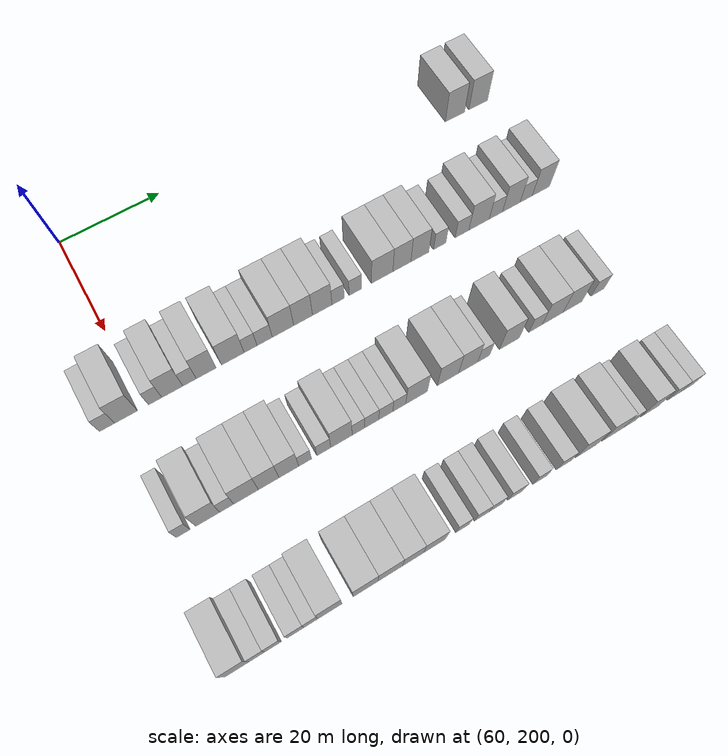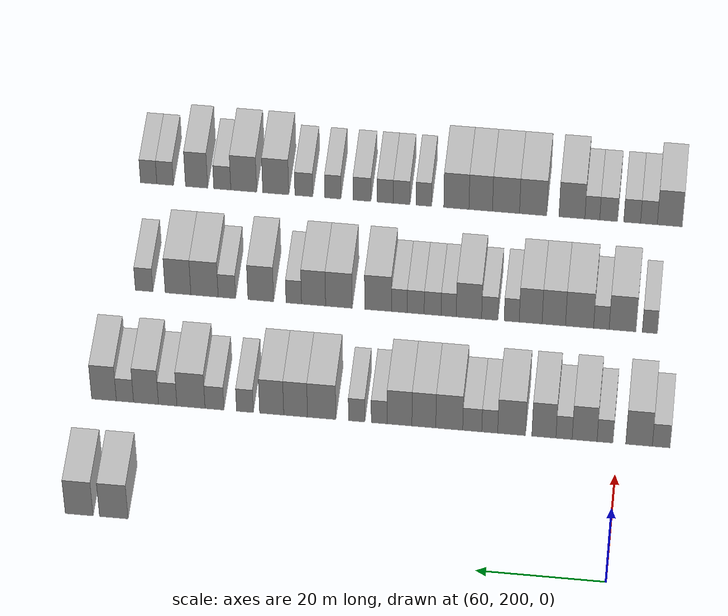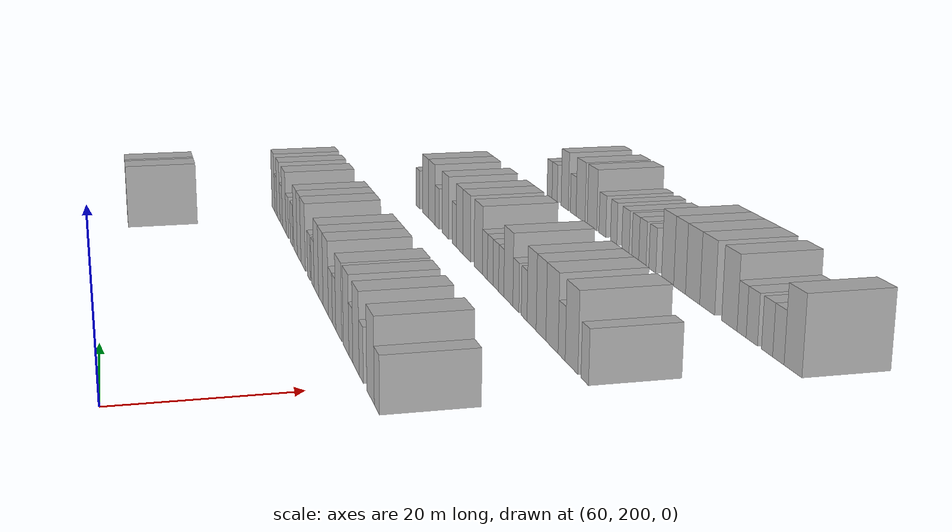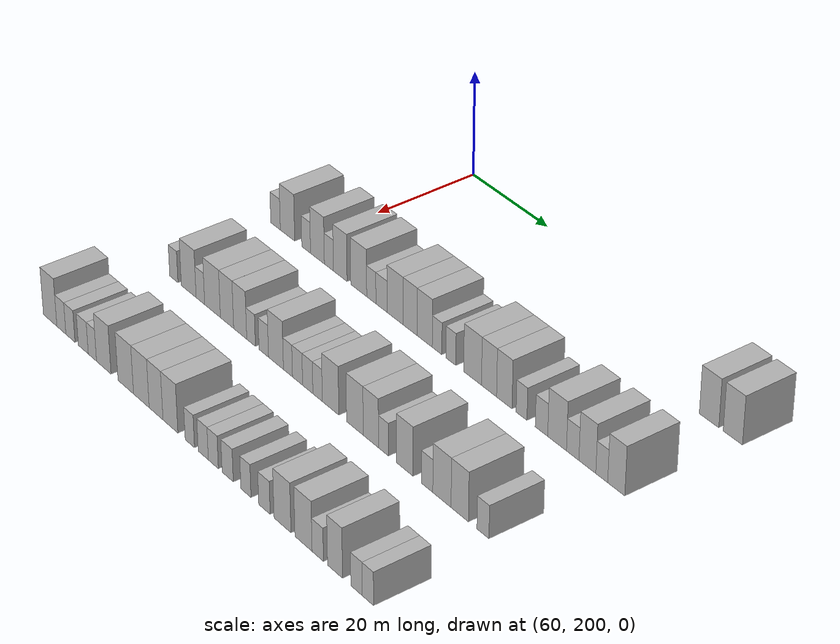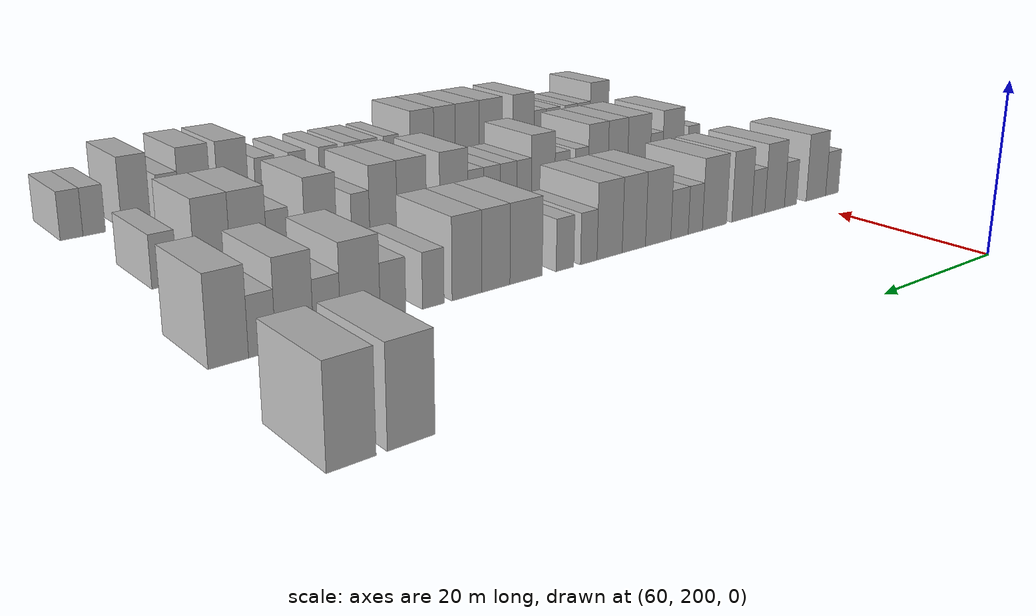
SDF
<sdf version="1.6">
 <world name="default">
  <model name="building_536">
   <static>1</static>
   <pose>69.0000 276.4742 0 0.000000 0.000000 0.000000</pose>
   <link name="link">
    <pose>0 0 4.50 0 0 0</pose>
    <collision name="collision"><geometry><box><size>10.0000 4.4548 9.0000</size></box></geometry></collision>
    <visual name="visual">
     <cast_shadows>0</cast_shadows>
     <geometry><box><size>10.0000 4.4548 9.0000</size></box></geometry>
     <material>
      <script>
       <uri>model://HANNAS_wall/materials/scripts</uri>
       <uri>model://HANNAS_wall/materials/textures</uri>
       <name>vrc/HANNAS_wall</name>
      </script>
     </material>
    </visual>
   </link>
  </model>
  <model name="building_537">
   <static>1</static>
   <pose>69.0000 281.8696 0 0.000000 0.000000 0.000000</pose>
   <link name="link">
    <pose>0 0 4.50 0 0 0</pose>
    <collision name="collision"><geometry><box><size>10.0000 4.3360 9.0000</size></box></geometry></collision>
    <visual name="visual">
     <cast_shadows>0</cast_shadows>
     <geometry><box><size>10.0000 4.3360 9.0000</size></box></geometry>
     <material>
      <script>
       <uri>model://HANNAS_wall/materials/scripts</uri>
       <uri>model://HANNAS_wall/materials/textures</uri>
       <name>vrc/HANNAS_wall</name>
      </script>
     </material>
    </visual>
   </link>
  </model>
  <model name="building_697">
   <static>1</static>
   <pose>91.0000 193.2687 0 0.000000 0.000000 0.000000</pose>
   <link name="link">
    <pose>0 0 3.00 0 0 0</pose>
    <collision name="collision"><geometry><box><size>10.0000 2.7837 6.0000</size></box></geometry></collision>
    <visual name="visual">
     <cast_shadows>0</cast_shadows>
     <geometry><box><size>10.0000 2.7837 6.0000</size></box></geometry>
     <material>
      <script>
       <uri>model://HANNAS_wall/materials/scripts</uri>
       <uri>model://HANNAS_wall/materials/textures</uri>
       <name>vrc/HANNAS_wall</name>
      </script>
     </material>
    </visual>
   </link>
  </model>
  <model name="building_698">
   <static>1</static>
   <pose>91.0000 196.7406 0 0.000000 0.000000 0.000000</pose>
   <link name="link">
    <pose>0 0 4.50 0 0 0</pose>
    <collision name="collision"><geometry><box><size>10.0000 4.1602 9.0000</size></box></geometry></collision>
    <visual name="visual">
     <cast_shadows>0</cast_shadows>
     <geometry><box><size>10.0000 4.1602 9.0000</size></box></geometry>
     <material>
      <script>
       <uri>model://HANNAS_wall/materials/scripts</uri>
       <uri>model://HANNAS_wall/materials/textures</uri>
       <name>vrc/HANNAS_wall</name>
      </script>
     </material>
    </visual>
   </link>
  </model>
  <model name="building_699">
   <static>1</static>
   <pose>91.0000 202.0687 0 0.000000 0.000000 0.000000</pose>
   <link name="link">
    <pose>0 0 3.00 0 0 0</pose>
    <collision name="collision"><geometry><box><size>10.0000 2.4960 6.0000</size></box></geometry></collision>
    <visual name="visual">
     <cast_shadows>0</cast_shadows>
     <geometry><box><size>10.0000 2.4960 6.0000</size></box></geometry>
     <material>
      <script>
       <uri>model://HANNAS_wall/materials/scripts</uri>
       <uri>model://HANNAS_wall/materials/textures</uri>
       <name>vrc/HANNAS_wall</name>
      </script>
     </material>
    </visual>
   </link>
  </model>
  <model name="building_700">
   <static>1</static>
   <pose>91.0000 205.2713 0 0.000000 0.000000 0.000000</pose>
   <link name="link">
    <pose>0 0 4.50 0 0 0</pose>
    <collision name="collision"><geometry><box><size>10.0000 3.9091 9.0000</size></box></geometry></collision>
    <visual name="visual">
     <cast_shadows>0</cast_shadows>
     <geometry><box><size>10.0000 3.9091 9.0000</size></box></geometry>
     <material>
      <script>
       <uri>model://HANNAS_wall/materials/scripts</uri>
       <uri>model://HANNAS_wall/materials/textures</uri>
       <name>vrc/HANNAS_wall</name>
      </script>
     </material>
    </visual>
   </link>
  </model>
  <model name="building_701">
   <static>1</static>
   <pose>91.0000 208.4976 0 0.000000 0.000000 0.000000</pose>
   <link name="link">
    <pose>0 0 3.00 0 0 0</pose>
    <collision name="collision"><geometry><box><size>10.0000 2.5435 6.0000</size></box></geometry></collision>
    <visual name="visual">
     <cast_shadows>0</cast_shadows>
     <geometry><box><size>10.0000 2.5435 6.0000</size></box></geometry>
     <material>
      <script>
       <uri>model://HANNAS_wall/materials/scripts</uri>
       <uri>model://HANNAS_wall/materials/textures</uri>
       <name>vrc/HANNAS_wall</name>
      </script>
     </material>
    </visual>
   </link>
  </model>
  <model name="building_702">
   <static>1</static>
   <pose>91.0000 211.6591 0 0.000000 0.000000 0.000000</pose>
   <link name="link">
    <pose>0 0 4.50 0 0 0</pose>
    <collision name="collision"><geometry><box><size>10.0000 3.7796 9.0000</size></box></geometry></collision>
    <visual name="visual">
     <cast_shadows>0</cast_shadows>
     <geometry><box><size>10.0000 3.7796 9.0000</size></box></geometry>
     <material>
      <script>
       <uri>model://HANNAS_wall/materials/scripts</uri>
       <uri>model://HANNAS_wall/materials/textures</uri>
       <name>vrc/HANNAS_wall</name>
      </script>
     </material>
    </visual>
   </link>
  </model>
  <model name="building_703">
   <static>1</static>
   <pose>91.0000 216.7347 0 0.000000 0.000000 0.000000</pose>
   <link name="link">
    <pose>0 0 4.50 0 0 0</pose>
    <collision name="collision"><geometry><box><size>10.0000 4.3715 9.0000</size></box></geometry></collision>
    <visual name="visual">
     <cast_shadows>0</cast_shadows>
     <geometry><box><size>10.0000 4.3715 9.0000</size></box></geometry>
     <material>
      <script>
       <uri>model://HANNAS_wall/materials/scripts</uri>
       <uri>model://HANNAS_wall/materials/textures</uri>
       <name>vrc/HANNAS_wall</name>
      </script>
     </material>
    </visual>
   </link>
  </model>
  <model name="building_704">
   <static>1</static>
   <pose>91.0000 220.1733 0 0.000000 0.000000 0.000000</pose>
   <link name="link">
    <pose>0 0 3.00 0 0 0</pose>
    <collision name="collision"><geometry><box><size>10.0000 2.5058 6.0000</size></box></geometry></collision>
    <visual name="visual">
     <cast_shadows>0</cast_shadows>
     <geometry><box><size>10.0000 2.5058 6.0000</size></box></geometry>
     <material>
      <script>
       <uri>model://HANNAS_wall/materials/scripts</uri>
       <uri>model://HANNAS_wall/materials/textures</uri>
       <name>vrc/HANNAS_wall</name>
      </script>
     </material>
    </visual>
   </link>
  </model>
  <model name="building_705">
   <static>1</static>
   <pose>91.0000 222.9258 0 0.000000 0.000000 0.000000</pose>
   <link name="link">
    <pose>0 0 3.00 0 0 0</pose>
    <collision name="collision"><geometry><box><size>10.0000 2.9991 6.0000</size></box></geometry></collision>
    <visual name="visual">
     <cast_shadows>0</cast_shadows>
     <geometry><box><size>10.0000 2.9991 6.0000</size></box></geometry>
     <material>
      <script>
       <uri>model://HANNAS_wall/materials/scripts</uri>
       <uri>model://HANNAS_wall/materials/textures</uri>
       <name>vrc/HANNAS_wall</name>
      </script>
     </material>
    </visual>
   </link>
  </model>
  <model name="building_706">
   <static>1</static>
   <pose>91.0000 226.5424 0 0.000000 0.000000 0.000000</pose>
   <link name="link">
    <pose>0 0 4.50 0 0 0</pose>
    <collision name="collision"><geometry><box><size>10.0000 4.2341 9.0000</size></box></geometry></collision>
    <visual name="visual">
     <cast_shadows>0</cast_shadows>
     <geometry><box><size>10.0000 4.2341 9.0000</size></box></geometry>
     <material>
      <script>
       <uri>model://HANNAS_wall/materials/scripts</uri>
       <uri>model://HANNAS_wall/materials/textures</uri>
       <name>vrc/HANNAS_wall</name>
      </script>
     </material>
    </visual>
   </link>
  </model>
  <model name="building_707">
   <static>1</static>
   <pose>91.0000 230.5413 0 0.000000 0.000000 0.000000</pose>
   <link name="link">
    <pose>0 0 4.50 0 0 0</pose>
    <collision name="collision"><geometry><box><size>10.0000 3.7637 9.0000</size></box></geometry></collision>
    <visual name="visual">
     <cast_shadows>0</cast_shadows>
     <geometry><box><size>10.0000 3.7637 9.0000</size></box></geometry>
     <material>
      <script>
       <uri>model://HANNAS_wall/materials/scripts</uri>
       <uri>model://HANNAS_wall/materials/textures</uri>
       <name>vrc/HANNAS_wall</name>
      </script>
     </material>
    </visual>
   </link>
  </model>
  <model name="building_708">
   <static>1</static>
   <pose>91.0000 234.3810 0 0.000000 0.000000 0.000000</pose>
   <link name="link">
    <pose>0 0 4.50 0 0 0</pose>
    <collision name="collision"><geometry><box><size>10.0000 3.9159 9.0000</size></box></geometry></collision>
    <visual name="visual">
     <cast_shadows>0</cast_shadows>
     <geometry><box><size>10.0000 3.9159 9.0000</size></box></geometry>
     <material>
      <script>
       <uri>model://HANNAS_wall/materials/scripts</uri>
       <uri>model://HANNAS_wall/materials/textures</uri>
       <name>vrc/HANNAS_wall</name>
      </script>
     </material>
    </visual>
   </link>
  </model>
  <model name="building_709">
   <static>1</static>
   <pose>91.0000 237.5870 0 0.000000 0.000000 0.000000</pose>
   <link name="link">
    <pose>0 0 3.00 0 0 0</pose>
    <collision name="collision"><geometry><box><size>10.0000 2.4960 6.0000</size></box></geometry></collision>
    <visual name="visual">
     <cast_shadows>0</cast_shadows>
     <geometry><box><size>10.0000 2.4960 6.0000</size></box></geometry>
     <material>
      <script>
       <uri>model://HANNAS_wall/materials/scripts</uri>
       <uri>model://HANNAS_wall/materials/textures</uri>
       <name>vrc/HANNAS_wall</name>
      </script>
     </material>
    </visual>
   </link>
  </model>
  <model name="building_710">
   <static>1</static>
   <pose>91.0000 241.1282 0 0.000000 0.000000 0.000000</pose>
   <link name="link">
    <pose>0 0 3.00 0 0 0</pose>
    <collision name="collision"><geometry><box><size>10.0000 2.5864 6.0000</size></box></geometry></collision>
    <visual name="visual">
     <cast_shadows>0</cast_shadows>
     <geometry><box><size>10.0000 2.5864 6.0000</size></box></geometry>
     <material>
      <script>
       <uri>model://HANNAS_wall/materials/scripts</uri>
       <uri>model://HANNAS_wall/materials/textures</uri>
       <name>vrc/HANNAS_wall</name>
      </script>
     </material>
    </visual>
   </link>
  </model>
  <model name="building_711">
   <static>1</static>
   <pose>91.0000 246.6626 0 0.000000 0.000000 0.000000</pose>
   <link name="link">
    <pose>0 0 4.50 0 0 0</pose>
    <collision name="collision"><geometry><box><size>10.0000 4.4825 9.0000</size></box></geometry></collision>
    <visual name="visual">
     <cast_shadows>0</cast_shadows>
     <geometry><box><size>10.0000 4.4825 9.0000</size></box></geometry>
     <material>
      <script>
       <uri>model://HANNAS_wall/materials/scripts</uri>
       <uri>model://HANNAS_wall/materials/textures</uri>
       <name>vrc/HANNAS_wall</name>
      </script>
     </material>
    </visual>
   </link>
  </model>
  <model name="building_712">
   <static>1</static>
   <pose>91.0000 250.7848 0 0.000000 0.000000 0.000000</pose>
   <link name="link">
    <pose>0 0 4.50 0 0 0</pose>
    <collision name="collision"><geometry><box><size>10.0000 3.7620 9.0000</size></box></geometry></collision>
    <visual name="visual">
     <cast_shadows>0</cast_shadows>
     <geometry><box><size>10.0000 3.7620 9.0000</size></box></geometry>
     <material>
      <script>
       <uri>model://HANNAS_wall/materials/scripts</uri>
       <uri>model://HANNAS_wall/materials/textures</uri>
       <name>vrc/HANNAS_wall</name>
      </script>
     </material>
    </visual>
   </link>
  </model>
  <model name="building_713">
   <static>1</static>
   <pose>91.0000 254.5737 0 0.000000 0.000000 0.000000</pose>
   <link name="link">
    <pose>0 0 4.50 0 0 0</pose>
    <collision name="collision"><geometry><box><size>10.0000 3.8157 9.0000</size></box></geometry></collision>
    <visual name="visual">
     <cast_shadows>0</cast_shadows>
     <geometry><box><size>10.0000 3.8157 9.0000</size></box></geometry>
     <material>
      <script>
       <uri>model://HANNAS_wall/materials/scripts</uri>
       <uri>model://HANNAS_wall/materials/textures</uri>
       <name>vrc/HANNAS_wall</name>
      </script>
     </material>
    </visual>
   </link>
  </model>
  <model name="building_714">
   <static>1</static>
   <pose>91.0000 258.8102 0 0.000000 0.000000 0.000000</pose>
   <link name="link">
    <pose>0 0 3.00 0 0 0</pose>
    <collision name="collision"><geometry><box><size>10.0000 2.6571 6.0000</size></box></geometry></collision>
    <visual name="visual">
     <cast_shadows>0</cast_shadows>
     <geometry><box><size>10.0000 2.6571 6.0000</size></box></geometry>
     <material>
      <script>
       <uri>model://HANNAS_wall/materials/scripts</uri>
       <uri>model://HANNAS_wall/materials/textures</uri>
       <name>vrc/HANNAS_wall</name>
      </script>
     </material>
    </visual>
   </link>
  </model>
  <model name="building_715">
   <static>1</static>
   <pose>91.0000 263.6371 0 0.000000 0.000000 0.000000</pose>
   <link name="link">
    <pose>0 0 3.00 0 0 0</pose>
    <collision name="collision"><geometry><box><size>10.0000 2.9966 6.0000</size></box></geometry></collision>
    <visual name="visual">
     <cast_shadows>0</cast_shadows>
     <geometry><box><size>10.0000 2.9966 6.0000</size></box></geometry>
     <material>
      <script>
       <uri>model://HANNAS_wall/materials/scripts</uri>
       <uri>model://HANNAS_wall/materials/textures</uri>
       <name>vrc/HANNAS_wall</name>
      </script>
     </material>
    </visual>
   </link>
  </model>
  <model name="building_716">
   <static>1</static>
   <pose>91.0000 267.3681 0 0.000000 0.000000 0.000000</pose>
   <link name="link">
    <pose>0 0 4.50 0 0 0</pose>
    <collision name="collision"><geometry><box><size>10.0000 4.4655 9.0000</size></box></geometry></collision>
    <visual name="visual">
     <cast_shadows>0</cast_shadows>
     <geometry><box><size>10.0000 4.4655 9.0000</size></box></geometry>
     <material>
      <script>
       <uri>model://HANNAS_wall/materials/scripts</uri>
       <uri>model://HANNAS_wall/materials/textures</uri>
       <name>vrc/HANNAS_wall</name>
      </script>
     </material>
    </visual>
   </link>
  </model>
  <model name="building_717">
   <static>1</static>
   <pose>91.0000 271.0671 0 0.000000 0.000000 0.000000</pose>
   <link name="link">
    <pose>0 0 3.00 0 0 0</pose>
    <collision name="collision"><geometry><box><size>10.0000 2.9323 6.0000</size></box></geometry></collision>
    <visual name="visual">
     <cast_shadows>0</cast_shadows>
     <geometry><box><size>10.0000 2.9323 6.0000</size></box></geometry>
     <material>
      <script>
       <uri>model://HANNAS_wall/materials/scripts</uri>
       <uri>model://HANNAS_wall/materials/textures</uri>
       <name>vrc/HANNAS_wall</name>
      </script>
     </material>
    </visual>
   </link>
  </model>
  <model name="building_718">
   <static>1</static>
   <pose>91.0000 274.5083 0 0.000000 0.000000 0.000000</pose>
   <link name="link">
    <pose>0 0 4.50 0 0 0</pose>
    <collision name="collision"><geometry><box><size>10.0000 3.9501 9.0000</size></box></geometry></collision>
    <visual name="visual">
     <cast_shadows>0</cast_shadows>
     <geometry><box><size>10.0000 3.9501 9.0000</size></box></geometry>
     <material>
      <script>
       <uri>model://HANNAS_wall/materials/scripts</uri>
       <uri>model://HANNAS_wall/materials/textures</uri>
       <name>vrc/HANNAS_wall</name>
      </script>
     </material>
    </visual>
   </link>
  </model>
  <model name="building_719">
   <static>1</static>
   <pose>91.0000 277.8491 0 0.000000 0.000000 0.000000</pose>
   <link name="link">
    <pose>0 0 3.00 0 0 0</pose>
    <collision name="collision"><geometry><box><size>10.0000 2.7315 6.0000</size></box></geometry></collision>
    <visual name="visual">
     <cast_shadows>0</cast_shadows>
     <geometry><box><size>10.0000 2.7315 6.0000</size></box></geometry>
     <material>
      <script>
       <uri>model://HANNAS_wall/materials/scripts</uri>
       <uri>model://HANNAS_wall/materials/textures</uri>
       <name>vrc/HANNAS_wall</name>
      </script>
     </material>
    </visual>
   </link>
  </model>
  <model name="building_720">
   <static>1</static>
   <pose>91.0000 281.1796 0 0.000000 0.000000 0.000000</pose>
   <link name="link">
    <pose>0 0 4.50 0 0 0</pose>
    <collision name="collision"><geometry><box><size>10.0000 3.9295 9.0000</size></box></geometry></collision>
    <visual name="visual">
     <cast_shadows>0</cast_shadows>
     <geometry><box><size>10.0000 3.9295 9.0000</size></box></geometry>
     <material>
      <script>
       <uri>model://HANNAS_wall/materials/scripts</uri>
       <uri>model://HANNAS_wall/materials/textures</uri>
       <name>vrc/HANNAS_wall</name>
      </script>
     </material>
    </visual>
   </link>
  </model>
  <model name="building_878">
   <static>1</static>
   <pose>113.0000 196.4875 0 0.000000 0.000000 0.000000</pose>
   <link name="link">
    <pose>0 0 3.00 0 0 0</pose>
    <collision name="collision"><geometry><box><size>10.0000 2.4265 6.0000</size></box></geometry></collision>
    <visual name="visual">
     <cast_shadows>0</cast_shadows>
     <geometry><box><size>10.0000 2.4265 6.0000</size></box></geometry>
     <material>
      <script>
       <uri>model://HANNAS_wall/materials/scripts</uri>
       <uri>model://HANNAS_wall/materials/textures</uri>
       <name>vrc/HANNAS_wall</name>
      </script>
     </material>
    </visual>
   </link>
  </model>
  <model name="building_879">
   <static>1</static>
   <pose>113.0000 200.8503 0 0.000000 0.000000 0.000000</pose>
   <link name="link">
    <pose>0 0 4.50 0 0 0</pose>
    <collision name="collision"><geometry><box><size>10.0000 4.2990 9.0000</size></box></geometry></collision>
    <visual name="visual">
     <cast_shadows>0</cast_shadows>
     <geometry><box><size>10.0000 4.2990 9.0000</size></box></geometry>
     <material>
      <script>
       <uri>model://HANNAS_wall/materials/scripts</uri>
       <uri>model://HANNAS_wall/materials/textures</uri>
       <name>vrc/HANNAS_wall</name>
      </script>
     </material>
    </visual>
   </link>
  </model>
  <model name="building_880">
   <static>1</static>
   <pose>113.0000 204.2411 0 0.000000 0.000000 0.000000</pose>
   <link name="link">
    <pose>0 0 3.00 0 0 0</pose>
    <collision name="collision"><geometry><box><size>10.0000 2.4826 6.0000</size></box></geometry></collision>
    <visual name="visual">
     <cast_shadows>0</cast_shadows>
     <geometry><box><size>10.0000 2.4826 6.0000</size></box></geometry>
     <material>
      <script>
       <uri>model://HANNAS_wall/materials/scripts</uri>
       <uri>model://HANNAS_wall/materials/textures</uri>
       <name>vrc/HANNAS_wall</name>
      </script>
     </material>
    </visual>
   </link>
  </model>
  <model name="building_881">
   <static>1</static>
   <pose>113.0000 207.7307 0 0.000000 0.000000 0.000000</pose>
   <link name="link">
    <pose>0 0 4.50 0 0 0</pose>
    <collision name="collision"><geometry><box><size>10.0000 4.4964 9.0000</size></box></geometry></collision>
    <visual name="visual">
     <cast_shadows>0</cast_shadows>
     <geometry><box><size>10.0000 4.4964 9.0000</size></box></geometry>
     <material>
      <script>
       <uri>model://HANNAS_wall/materials/scripts</uri>
       <uri>model://HANNAS_wall/materials/textures</uri>
       <name>vrc/HANNAS_wall</name>
      </script>
     </material>
    </visual>
   </link>
  </model>
  <model name="building_882">
   <static>1</static>
   <pose>113.0000 211.8570 0 0.000000 0.000000 0.000000</pose>
   <link name="link">
    <pose>0 0 4.50 0 0 0</pose>
    <collision name="collision"><geometry><box><size>10.0000 3.7563 9.0000</size></box></geometry></collision>
    <visual name="visual">
     <cast_shadows>0</cast_shadows>
     <geometry><box><size>10.0000 3.7563 9.0000</size></box></geometry>
     <material>
      <script>
       <uri>model://HANNAS_wall/materials/scripts</uri>
       <uri>model://HANNAS_wall/materials/textures</uri>
       <name>vrc/HANNAS_wall</name>
      </script>
     </material>
    </visual>
   </link>
  </model>
  <model name="building_883">
   <static>1</static>
   <pose>113.0000 215.5660 0 0.000000 0.000000 0.000000</pose>
   <link name="link">
    <pose>0 0 4.50 0 0 0</pose>
    <collision name="collision"><geometry><box><size>10.0000 3.6616 9.0000</size></box></geometry></collision>
    <visual name="visual">
     <cast_shadows>0</cast_shadows>
     <geometry><box><size>10.0000 3.6616 9.0000</size></box></geometry>
     <material>
      <script>
       <uri>model://HANNAS_wall/materials/scripts</uri>
       <uri>model://HANNAS_wall/materials/textures</uri>
       <name>vrc/HANNAS_wall</name>
      </script>
     </material>
    </visual>
   </link>
  </model>
  <model name="building_884">
   <static>1</static>
   <pose>113.0000 218.6045 0 0.000000 0.000000 0.000000</pose>
   <link name="link">
    <pose>0 0 3.00 0 0 0</pose>
    <collision name="collision"><geometry><box><size>10.0000 2.4155 6.0000</size></box></geometry></collision>
    <visual name="visual">
     <cast_shadows>0</cast_shadows>
     <geometry><box><size>10.0000 2.4155 6.0000</size></box></geometry>
     <material>
      <script>
       <uri>model://HANNAS_wall/materials/scripts</uri>
       <uri>model://HANNAS_wall/materials/textures</uri>
       <name>vrc/HANNAS_wall</name>
      </script>
     </material>
    </visual>
   </link>
  </model>
  <model name="building_885">
   <static>1</static>
   <pose>113.0000 222.1207 0 0.000000 0.000000 0.000000</pose>
   <link name="link">
    <pose>0 0 3.00 0 0 0</pose>
    <collision name="collision"><geometry><box><size>10.0000 2.6170 6.0000</size></box></geometry></collision>
    <visual name="visual">
     <cast_shadows>0</cast_shadows>
     <geometry><box><size>10.0000 2.6170 6.0000</size></box></geometry>
     <material>
      <script>
       <uri>model://HANNAS_wall/materials/scripts</uri>
       <uri>model://HANNAS_wall/materials/textures</uri>
       <name>vrc/HANNAS_wall</name>
      </script>
     </material>
    </visual>
   </link>
  </model>
  <model name="building_886">
   <static>1</static>
   <pose>113.0000 225.4648 0 0.000000 0.000000 0.000000</pose>
   <link name="link">
    <pose>0 0 4.50 0 0 0</pose>
    <collision name="collision"><geometry><box><size>10.0000 4.0712 9.0000</size></box></geometry></collision>
    <visual name="visual">
     <cast_shadows>0</cast_shadows>
     <geometry><box><size>10.0000 4.0712 9.0000</size></box></geometry>
     <material>
      <script>
       <uri>model://HANNAS_wall/materials/scripts</uri>
       <uri>model://HANNAS_wall/materials/textures</uri>
       <name>vrc/HANNAS_wall</name>
      </script>
     </material>
    </visual>
   </link>
  </model>
  <model name="building_887">
   <static>1</static>
   <pose>113.0000 228.7175 0 0.000000 0.000000 0.000000</pose>
   <link name="link">
    <pose>0 0 3.00 0 0 0</pose>
    <collision name="collision"><geometry><box><size>10.0000 2.4342 6.0000</size></box></geometry></collision>
    <visual name="visual">
     <cast_shadows>0</cast_shadows>
     <geometry><box><size>10.0000 2.4342 6.0000</size></box></geometry>
     <material>
      <script>
       <uri>model://HANNAS_wall/materials/scripts</uri>
       <uri>model://HANNAS_wall/materials/textures</uri>
       <name>vrc/HANNAS_wall</name>
      </script>
     </material>
    </visual>
   </link>
  </model>
  <model name="building_888">
   <static>1</static>
   <pose>113.0000 231.2942 0 0.000000 0.000000 0.000000</pose>
   <link name="link">
    <pose>0 0 3.00 0 0 0</pose>
    <collision name="collision"><geometry><box><size>10.0000 2.7192 6.0000</size></box></geometry></collision>
    <visual name="visual">
     <cast_shadows>0</cast_shadows>
     <geometry><box><size>10.0000 2.7192 6.0000</size></box></geometry>
     <material>
      <script>
       <uri>model://HANNAS_wall/materials/scripts</uri>
       <uri>model://HANNAS_wall/materials/textures</uri>
       <name>vrc/HANNAS_wall</name>
      </script>
     </material>
    </visual>
   </link>
  </model>
  <model name="building_889">
   <static>1</static>
   <pose>113.0000 234.0199 0 0.000000 0.000000 0.000000</pose>
   <link name="link">
    <pose>0 0 3.00 0 0 0</pose>
    <collision name="collision"><geometry><box><size>10.0000 2.7321 6.0000</size></box></geometry></collision>
    <visual name="visual">
     <cast_shadows>0</cast_shadows>
     <geometry><box><size>10.0000 2.7321 6.0000</size></box></geometry>
     <material>
      <script>
       <uri>model://HANNAS_wall/materials/scripts</uri>
       <uri>model://HANNAS_wall/materials/textures</uri>
       <name>vrc/HANNAS_wall</name>
      </script>
     </material>
    </visual>
   </link>
  </model>
  <model name="building_890">
   <static>1</static>
   <pose>113.0000 236.6410 0 0.000000 0.000000 0.000000</pose>
   <link name="link">
    <pose>0 0 3.00 0 0 0</pose>
    <collision name="collision"><geometry><box><size>10.0000 2.5101 6.0000</size></box></geometry></collision>
    <visual name="visual">
     <cast_shadows>0</cast_shadows>
     <geometry><box><size>10.0000 2.5101 6.0000</size></box></geometry>
     <material>
      <script>
       <uri>model://HANNAS_wall/materials/scripts</uri>
       <uri>model://HANNAS_wall/materials/textures</uri>
       <name>vrc/HANNAS_wall</name>
      </script>
     </material>
    </visual>
   </link>
  </model>
  <model name="building_891">
   <static>1</static>
   <pose>113.0000 240.0568 0 0.000000 0.000000 0.000000</pose>
   <link name="link">
    <pose>0 0 4.50 0 0 0</pose>
    <collision name="collision"><geometry><box><size>10.0000 4.3216 9.0000</size></box></geometry></collision>
    <visual name="visual">
     <cast_shadows>0</cast_shadows>
     <geometry><box><size>10.0000 4.3216 9.0000</size></box></geometry>
     <material>
      <script>
       <uri>model://HANNAS_wall/materials/scripts</uri>
       <uri>model://HANNAS_wall/materials/textures</uri>
       <name>vrc/HANNAS_wall</name>
      </script>
     </material>
    </visual>
   </link>
  </model>
  <model name="building_892">
   <static>1</static>
   <pose>113.0000 246.3700 0 0.000000 0.000000 0.000000</pose>
   <link name="link">
    <pose>0 0 4.50 0 0 0</pose>
    <collision name="collision"><geometry><box><size>10.0000 4.3047 9.0000</size></box></geometry></collision>
    <visual name="visual">
     <cast_shadows>0</cast_shadows>
     <geometry><box><size>10.0000 4.3047 9.0000</size></box></geometry>
     <material>
      <script>
       <uri>model://HANNAS_wall/materials/scripts</uri>
       <uri>model://HANNAS_wall/materials/textures</uri>
       <name>vrc/HANNAS_wall</name>
      </script>
     </material>
    </visual>
   </link>
  </model>
  <model name="building_893">
   <static>1</static>
   <pose>113.0000 250.4628 0 0.000000 0.000000 0.000000</pose>
   <link name="link">
    <pose>0 0 4.50 0 0 0</pose>
    <collision name="collision"><geometry><box><size>10.0000 3.8809 9.0000</size></box></geometry></collision>
    <visual name="visual">
     <cast_shadows>0</cast_shadows>
     <geometry><box><size>10.0000 3.8809 9.0000</size></box></geometry>
     <material>
      <script>
       <uri>model://HANNAS_wall/materials/scripts</uri>
       <uri>model://HANNAS_wall/materials/textures</uri>
       <name>vrc/HANNAS_wall</name>
      </script>
     </material>
    </visual>
   </link>
  </model>
  <model name="building_894">
   <static>1</static>
   <pose>113.0000 253.6538 0 0.000000 0.000000 0.000000</pose>
   <link name="link">
    <pose>0 0 3.00 0 0 0</pose>
    <collision name="collision"><geometry><box><size>10.0000 2.5013 6.0000</size></box></geometry></collision>
    <visual name="visual">
     <cast_shadows>0</cast_shadows>
     <geometry><box><size>10.0000 2.5013 6.0000</size></box></geometry>
     <material>
      <script>
       <uri>model://HANNAS_wall/materials/scripts</uri>
       <uri>model://HANNAS_wall/materials/textures</uri>
       <name>vrc/HANNAS_wall</name>
      </script>
     </material>
    </visual>
   </link>
  </model>
  <model name="building_895">
   <static>1</static>
   <pose>113.0000 258.9767 0 0.000000 0.000000 0.000000</pose>
   <link name="link">
    <pose>0 0 4.50 0 0 0</pose>
    <collision name="collision"><geometry><box><size>10.0000 4.1444 9.0000</size></box></geometry></collision>
    <visual name="visual">
     <cast_shadows>0</cast_shadows>
     <geometry><box><size>10.0000 4.1444 9.0000</size></box></geometry>
     <material>
      <script>
       <uri>model://HANNAS_wall/materials/scripts</uri>
       <uri>model://HANNAS_wall/materials/textures</uri>
       <name>vrc/HANNAS_wall</name>
      </script>
     </material>
    </visual>
   </link>
  </model>
  <model name="building_896">
   <static>1</static>
   <pose>113.0000 264.4590 0 0.000000 0.000000 0.000000</pose>
   <link name="link">
    <pose>0 0 3.00 0 0 0</pose>
    <collision name="collision"><geometry><box><size>10.0000 2.8202 6.0000</size></box></geometry></collision>
    <visual name="visual">
     <cast_shadows>0</cast_shadows>
     <geometry><box><size>10.0000 2.8202 6.0000</size></box></geometry>
     <material>
      <script>
       <uri>model://HANNAS_wall/materials/scripts</uri>
       <uri>model://HANNAS_wall/materials/textures</uri>
       <name>vrc/HANNAS_wall</name>
      </script>
     </material>
    </visual>
   </link>
  </model>
  <model name="building_897">
   <static>1</static>
   <pose>113.0000 268.0753 0 0.000000 0.000000 0.000000</pose>
   <link name="link">
    <pose>0 0 4.50 0 0 0</pose>
    <collision name="collision"><geometry><box><size>10.0000 4.4126 9.0000</size></box></geometry></collision>
    <visual name="visual">
     <cast_shadows>0</cast_shadows>
     <geometry><box><size>10.0000 4.4126 9.0000</size></box></geometry>
     <material>
      <script>
       <uri>model://HANNAS_wall/materials/scripts</uri>
       <uri>model://HANNAS_wall/materials/textures</uri>
       <name>vrc/HANNAS_wall</name>
      </script>
     </material>
    </visual>
   </link>
  </model>
  <model name="building_898">
   <static>1</static>
   <pose>113.0000 272.3599 0 0.000000 0.000000 0.000000</pose>
   <link name="link">
    <pose>0 0 4.50 0 0 0</pose>
    <collision name="collision"><geometry><box><size>10.0000 4.1566 9.0000</size></box></geometry></collision>
    <visual name="visual">
     <cast_shadows>0</cast_shadows>
     <geometry><box><size>10.0000 4.1566 9.0000</size></box></geometry>
     <material>
      <script>
       <uri>model://HANNAS_wall/materials/scripts</uri>
       <uri>model://HANNAS_wall/materials/textures</uri>
       <name>vrc/HANNAS_wall</name>
      </script>
     </material>
    </visual>
   </link>
  </model>
  <model name="building_899">
   <static>1</static>
   <pose>113.0000 277.8537 0 0.000000 0.000000 0.000000</pose>
   <link name="link">
    <pose>0 0 3.00 0 0 0</pose>
    <collision name="collision"><geometry><box><size>10.0000 2.8308 6.0000</size></box></geometry></collision>
    <visual name="visual">
     <cast_shadows>0</cast_shadows>
     <geometry><box><size>10.0000 2.8308 6.0000</size></box></geometry>
     <material>
      <script>
       <uri>model://HANNAS_wall/materials/scripts</uri>
       <uri>model://HANNAS_wall/materials/textures</uri>
       <name>vrc/HANNAS_wall</name>
      </script>
     </material>
    </visual>
   </link>
  </model>
  <model name="building_1074">
   <static>1</static>
   <pose>135.0000 194.6925 0 0.000000 0.000000 0.000000</pose>
   <link name="link">
    <pose>0 0 4.50 0 0 0</pose>
    <collision name="collision"><geometry><box><size>10.0000 4.0730 9.0000</size></box></geometry></collision>
    <visual name="visual">
     <cast_shadows>0</cast_shadows>
     <geometry><box><size>10.0000 4.0730 9.0000</size></box></geometry>
     <material>
      <script>
       <uri>model://HANNAS_wall/materials/scripts</uri>
       <uri>model://HANNAS_wall/materials/textures</uri>
       <name>vrc/HANNAS_wall</name>
      </script>
     </material>
    </visual>
   </link>
  </model>
  <model name="building_1075">
   <static>1</static>
   <pose>135.0000 198.0880 0 0.000000 0.000000 0.000000</pose>
   <link name="link">
    <pose>0 0 3.00 0 0 0</pose>
    <collision name="collision"><geometry><box><size>10.0000 2.7179 6.0000</size></box></geometry></collision>
    <visual name="visual">
     <cast_shadows>0</cast_shadows>
     <geometry><box><size>10.0000 2.7179 6.0000</size></box></geometry>
     <material>
      <script>
       <uri>model://HANNAS_wall/materials/scripts</uri>
       <uri>model://HANNAS_wall/materials/textures</uri>
       <name>vrc/HANNAS_wall</name>
      </script>
     </material>
    </visual>
   </link>
  </model>
  <model name="building_1076">
   <static>1</static>
   <pose>135.0000 200.8140 0 0.000000 0.000000 0.000000</pose>
   <link name="link">
    <pose>0 0 3.00 0 0 0</pose>
    <collision name="collision"><geometry><box><size>10.0000 2.7342 6.0000</size></box></geometry></collision>
    <visual name="visual">
     <cast_shadows>0</cast_shadows>
     <geometry><box><size>10.0000 2.7342 6.0000</size></box></geometry>
     <material>
      <script>
       <uri>model://HANNAS_wall/materials/scripts</uri>
       <uri>model://HANNAS_wall/materials/textures</uri>
       <name>vrc/HANNAS_wall</name>
      </script>
     </material>
    </visual>
   </link>
  </model>
  <model name="building_1077">
   <static>1</static>
   <pose>135.0000 204.6420 0 0.000000 0.000000 0.000000</pose>
   <link name="link">
    <pose>0 0 3.00 0 0 0</pose>
    <collision name="collision"><geometry><box><size>10.0000 2.9218 6.0000</size></box></geometry></collision>
    <visual name="visual">
     <cast_shadows>0</cast_shadows>
     <geometry><box><size>10.0000 2.9218 6.0000</size></box></geometry>
     <material>
      <script>
       <uri>model://HANNAS_wall/materials/scripts</uri>
       <uri>model://HANNAS_wall/materials/textures</uri>
       <name>vrc/HANNAS_wall</name>
      </script>
     </material>
    </visual>
   </link>
  </model>
  <model name="building_1078">
   <static>1</static>
   <pose>135.0000 207.3107 0 0.000000 0.000000 0.000000</pose>
   <link name="link">
    <pose>0 0 3.00 0 0 0</pose>
    <collision name="collision"><geometry><box><size>10.0000 2.4154 6.0000</size></box></geometry></collision>
    <visual name="visual">
     <cast_shadows>0</cast_shadows>
     <geometry><box><size>10.0000 2.4154 6.0000</size></box></geometry>
     <material>
      <script>
       <uri>model://HANNAS_wall/materials/scripts</uri>
       <uri>model://HANNAS_wall/materials/textures</uri>
       <name>vrc/HANNAS_wall</name>
      </script>
     </material>
    </visual>
   </link>
  </model>
  <model name="building_1079">
   <static>1</static>
   <pose>135.0000 210.6360 0 0.000000 0.000000 0.000000</pose>
   <link name="link">
    <pose>0 0 4.50 0 0 0</pose>
    <collision name="collision"><geometry><box><size>10.0000 4.2353 9.0000</size></box></geometry></collision>
    <visual name="visual">
     <cast_shadows>0</cast_shadows>
     <geometry><box><size>10.0000 4.2353 9.0000</size></box></geometry>
     <material>
      <script>
       <uri>model://HANNAS_wall/materials/scripts</uri>
       <uri>model://HANNAS_wall/materials/textures</uri>
       <name>vrc/HANNAS_wall</name>
      </script>
     </material>
    </visual>
   </link>
  </model>
  <model name="building_1080">
   <static>1</static>
   <pose>135.0000 216.9783 0 0.000000 0.000000 0.000000</pose>
   <link name="link">
    <pose>0 0 4.50 0 0 0</pose>
    <collision name="collision"><geometry><box><size>10.0000 4.4493 9.0000</size></box></geometry></collision>
    <visual name="visual">
     <cast_shadows>0</cast_shadows>
     <geometry><box><size>10.0000 4.4493 9.0000</size></box></geometry>
     <material>
      <script>
       <uri>model://HANNAS_wall/materials/scripts</uri>
       <uri>model://HANNAS_wall/materials/textures</uri>
       <name>vrc/HANNAS_wall</name>
      </script>
     </material>
    </visual>
   </link>
  </model>
  <model name="building_1081">
   <static>1</static>
   <pose>135.0000 221.4137 0 0.000000 0.000000 0.000000</pose>
   <link name="link">
    <pose>0 0 4.50 0 0 0</pose>
    <collision name="collision"><geometry><box><size>10.0000 4.4215 9.0000</size></box></geometry></collision>
    <visual name="visual">
     <cast_shadows>0</cast_shadows>
     <geometry><box><size>10.0000 4.4215 9.0000</size></box></geometry>
     <material>
      <script>
       <uri>model://HANNAS_wall/materials/scripts</uri>
       <uri>model://HANNAS_wall/materials/textures</uri>
       <name>vrc/HANNAS_wall</name>
      </script>
     </material>
    </visual>
   </link>
  </model>
  <model name="building_1082">
   <static>1</static>
   <pose>135.0000 225.5515 0 0.000000 0.000000 0.000000</pose>
   <link name="link">
    <pose>0 0 4.50 0 0 0</pose>
    <collision name="collision"><geometry><box><size>10.0000 3.8541 9.0000</size></box></geometry></collision>
    <visual name="visual">
     <cast_shadows>0</cast_shadows>
     <geometry><box><size>10.0000 3.8541 9.0000</size></box></geometry>
     <material>
      <script>
       <uri>model://HANNAS_wall/materials/scripts</uri>
       <uri>model://HANNAS_wall/materials/textures</uri>
       <name>vrc/HANNAS_wall</name>
      </script>
     </material>
    </visual>
   </link>
  </model>
  <model name="building_1083">
   <static>1</static>
   <pose>135.0000 229.5363 0 0.000000 0.000000 0.000000</pose>
   <link name="link">
    <pose>0 0 4.50 0 0 0</pose>
    <collision name="collision"><geometry><box><size>10.0000 4.1157 9.0000</size></box></geometry></collision>
    <visual name="visual">
     <cast_shadows>0</cast_shadows>
     <geometry><box><size>10.0000 4.1157 9.0000</size></box></geometry>
     <material>
      <script>
       <uri>model://HANNAS_wall/materials/scripts</uri>
       <uri>model://HANNAS_wall/materials/textures</uri>
       <name>vrc/HANNAS_wall</name>
      </script>
     </material>
    </visual>
   </link>
  </model>
  <model name="building_1084">
   <static>1</static>
   <pose>135.0000 234.8593 0 0.000000 0.000000 0.000000</pose>
   <link name="link">
    <pose>0 0 3.00 0 0 0</pose>
    <collision name="collision"><geometry><box><size>10.0000 2.5302 6.0000</size></box></geometry></collision>
    <visual name="visual">
     <cast_shadows>0</cast_shadows>
     <geometry><box><size>10.0000 2.5302 6.0000</size></box></geometry>
     <material>
      <script>
       <uri>model://HANNAS_wall/materials/scripts</uri>
       <uri>model://HANNAS_wall/materials/textures</uri>
       <name>vrc/HANNAS_wall</name>
      </script>
     </material>
    </visual>
   </link>
  </model>
  <model name="building_1085">
   <static>1</static>
   <pose>135.0000 238.4883 0 0.000000 0.000000 0.000000</pose>
   <link name="link">
    <pose>0 0 3.00 0 0 0</pose>
    <collision name="collision"><geometry><box><size>10.0000 2.7278 6.0000</size></box></geometry></collision>
    <visual name="visual">
     <cast_shadows>0</cast_shadows>
     <geometry><box><size>10.0000 2.7278 6.0000</size></box></geometry>
     <material>
      <script>
       <uri>model://HANNAS_wall/materials/scripts</uri>
       <uri>model://HANNAS_wall/materials/textures</uri>
       <name>vrc/HANNAS_wall</name>
      </script>
     </material>
    </visual>
   </link>
  </model>
  <model name="building_1086">
   <static>1</static>
   <pose>135.0000 241.1926 0 0.000000 0.000000 0.000000</pose>
   <link name="link">
    <pose>0 0 3.00 0 0 0</pose>
    <collision name="collision"><geometry><box><size>10.0000 2.6809 6.0000</size></box></geometry></collision>
    <visual name="visual">
     <cast_shadows>0</cast_shadows>
     <geometry><box><size>10.0000 2.6809 6.0000</size></box></geometry>
     <material>
      <script>
       <uri>model://HANNAS_wall/materials/scripts</uri>
       <uri>model://HANNAS_wall/materials/textures</uri>
       <name>vrc/HANNAS_wall</name>
      </script>
     </material>
    </visual>
   </link>
  </model>
  <model name="building_1087">
   <static>1</static>
   <pose>135.0000 245.0049 0 0.000000 0.000000 0.000000</pose>
   <link name="link">
    <pose>0 0 3.00 0 0 0</pose>
    <collision name="collision"><geometry><box><size>10.0000 2.9436 6.0000</size></box></geometry></collision>
    <visual name="visual">
     <cast_shadows>0</cast_shadows>
     <geometry><box><size>10.0000 2.9436 6.0000</size></box></geometry>
     <material>
      <script>
       <uri>model://HANNAS_wall/materials/scripts</uri>
       <uri>model://HANNAS_wall/materials/textures</uri>
       <name>vrc/HANNAS_wall</name>
      </script>
     </material>
    </visual>
   </link>
  </model>
  <model name="building_1088">
   <static>1</static>
   <pose>135.0000 249.7926 0 0.000000 0.000000 0.000000</pose>
   <link name="link">
    <pose>0 0 3.00 0 0 0</pose>
    <collision name="collision"><geometry><box><size>10.0000 2.6319 6.0000</size></box></geometry></collision>
    <visual name="visual">
     <cast_shadows>0</cast_shadows>
     <geometry><box><size>10.0000 2.6319 6.0000</size></box></geometry>
     <material>
      <script>
       <uri>model://HANNAS_wall/materials/scripts</uri>
       <uri>model://HANNAS_wall/materials/textures</uri>
       <name>vrc/HANNAS_wall</name>
      </script>
     </material>
    </visual>
   </link>
  </model>
  <model name="building_1089">
   <static>1</static>
   <pose>135.0000 254.5738 0 0.000000 0.000000 0.000000</pose>
   <link name="link">
    <pose>0 0 3.00 0 0 0</pose>
    <collision name="collision"><geometry><box><size>10.0000 2.9304 6.0000</size></box></geometry></collision>
    <visual name="visual">
     <cast_shadows>0</cast_shadows>
     <geometry><box><size>10.0000 2.9304 6.0000</size></box></geometry>
     <material>
      <script>
       <uri>model://HANNAS_wall/materials/scripts</uri>
       <uri>model://HANNAS_wall/materials/textures</uri>
       <name>vrc/HANNAS_wall</name>
      </script>
     </material>
    </visual>
   </link>
  </model>
  <model name="building_1090">
   <static>1</static>
   <pose>135.0000 259.1848 0 0.000000 0.000000 0.000000</pose>
   <link name="link">
    <pose>0 0 4.50 0 0 0</pose>
    <collision name="collision"><geometry><box><size>10.0000 4.2916 9.0000</size></box></geometry></collision>
    <visual name="visual">
     <cast_shadows>0</cast_shadows>
     <geometry><box><size>10.0000 4.2916 9.0000</size></box></geometry>
     <material>
      <script>
       <uri>model://HANNAS_wall/materials/scripts</uri>
       <uri>model://HANNAS_wall/materials/textures</uri>
       <name>vrc/HANNAS_wall</name>
      </script>
     </material>
    </visual>
   </link>
  </model>
  <model name="building_1091">
   <static>1</static>
   <pose>135.0000 264.4647 0 0.000000 0.000000 0.000000</pose>
   <link name="link">
    <pose>0 0 4.50 0 0 0</pose>
    <collision name="collision"><geometry><box><size>10.0000 4.2683 9.0000</size></box></geometry></collision>
    <visual name="visual">
     <cast_shadows>0</cast_shadows>
     <geometry><box><size>10.0000 4.2683 9.0000</size></box></geometry>
     <material>
      <script>
       <uri>model://HANNAS_wall/materials/scripts</uri>
       <uri>model://HANNAS_wall/materials/textures</uri>
       <name>vrc/HANNAS_wall</name>
      </script>
     </material>
    </visual>
   </link>
  </model>
  <model name="building_1092">
   <static>1</static>
   <pose>135.0000 268.0024 0 0.000000 0.000000 0.000000</pose>
   <link name="link">
    <pose>0 0 3.00 0 0 0</pose>
    <collision name="collision"><geometry><box><size>10.0000 2.8071 6.0000</size></box></geometry></collision>
    <visual name="visual">
     <cast_shadows>0</cast_shadows>
     <geometry><box><size>10.0000 2.8071 6.0000</size></box></geometry>
     <material>
      <script>
       <uri>model://HANNAS_wall/materials/scripts</uri>
       <uri>model://HANNAS_wall/materials/textures</uri>
       <name>vrc/HANNAS_wall</name>
      </script>
     </material>
    </visual>
   </link>
  </model>
  <model name="building_1093">
   <static>1</static>
   <pose>135.0000 272.2349 0 0.000000 0.000000 0.000000</pose>
   <link name="link">
    <pose>0 0 4.50 0 0 0</pose>
    <collision name="collision"><geometry><box><size>10.0000 3.6580 9.0000</size></box></geometry></collision>
    <visual name="visual">
     <cast_shadows>0</cast_shadows>
     <geometry><box><size>10.0000 3.6580 9.0000</size></box></geometry>
     <material>
      <script>
       <uri>model://HANNAS_wall/materials/scripts</uri>
       <uri>model://HANNAS_wall/materials/textures</uri>
       <name>vrc/HANNAS_wall</name>
      </script>
     </material>
    </visual>
   </link>
  </model>
  <model name="building_1094">
   <static>1</static>
   <pose>135.0000 277.4337 0 0.000000 0.000000 0.000000</pose>
   <link name="link">
    <pose>0 0 3.00 0 0 0</pose>
    <collision name="collision"><geometry><box><size>10.0000 2.7394 6.0000</size></box></geometry></collision>
    <visual name="visual">
     <cast_shadows>0</cast_shadows>
     <geometry><box><size>10.0000 2.7394 6.0000</size></box></geometry>
     <material>
      <script>
       <uri>model://HANNAS_wall/materials/scripts</uri>
       <uri>model://HANNAS_wall/materials/textures</uri>
       <name>vrc/HANNAS_wall</name>
      </script>
     </material>
    </visual>
   </link>
  </model>
  <model name="building_1095">
   <static>1</static>
   <pose>135.0000 280.1536 0 0.000000 0.000000 0.000000</pose>
   <link name="link">
    <pose>0 0 3.00 0 0 0</pose>
    <collision name="collision"><geometry><box><size>10.0000 2.7004 6.0000</size></box></geometry></collision>
    <visual name="visual">
     <cast_shadows>0</cast_shadows>
     <geometry><box><size>10.0000 2.7004 6.0000</size></box></geometry>
     <material>
      <script>
       <uri>model://HANNAS_wall/materials/scripts</uri>
       <uri>model://HANNAS_wall/materials/textures</uri>
       <name>vrc/HANNAS_wall</name>
      </script>
     </material>
    </visual>
   </link>
  </model>
 </world>
</sdf>
